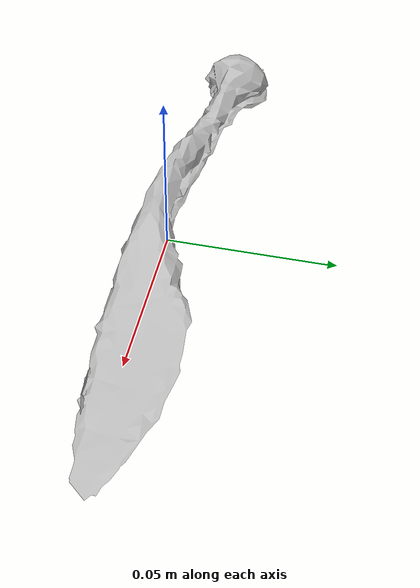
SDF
<?xml version='1.0'?>
<sdf version='1.6'>
	<model name='b_small_knife'>
		<static>false</static>
		<pose>0 0 0 0 0 0</pose>

		<link name='link'>
			<inertial>
			<mass>0.15</mass>
			<pose>1.6078e-05 -1.0847e-05 -1.9891e-07 0 0 0</pose>
				<inertia>
					<ixx>6.914e-10</ixx>
					<ixy>0</ixy>
					<ixz>0</ixz>
					<iyy>1.0684e-09</iyy>
					<iyz>0</iyz>
					<izz>1.5341e-09</izz>
				</inertia>
			</inertial>
			<sensor name="tool_contact_sensor" type="contact">
				<always_on>true</always_on>
				<update_rate>30.0</update_rate>
				<contact>
					<collision>collision</collision>
				</contact>
				<plugin name="tool_bumper" filename="libgazebo_ros_bumper.so">
					<bumperTopicName>tool_contact_sensor_state</bumperTopicName>
					<frameName>world</frameName>
				</plugin>
			</sensor>
			<collision name='collision'>
				<geometry>
					<mesh>
						<uri>model://b_small_knife/b_small_knife.dae</uri>
					</mesh>
				</geometry>
				<surface>
					<friction>
						<ode>
							<mu>0.2</mu>
							<mu2>0.2</mu2>
						</ode>
					</friction>
				</surface>
			</collision>
			<visual name='visual'>
				<geometry>
					<mesh>
						<uri>model://b_small_knife/b_small_knife.dae</uri>
					</mesh>
				</geometry>
			</visual>
		</link>
	</model>
</sdf>
